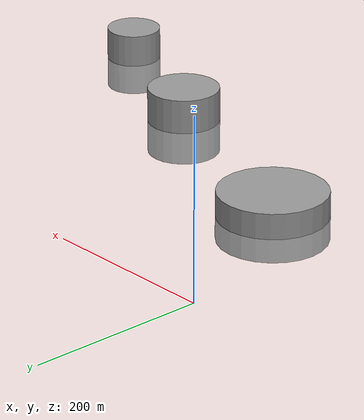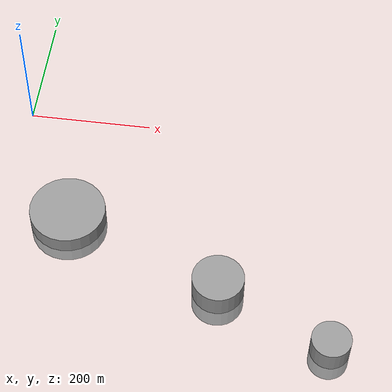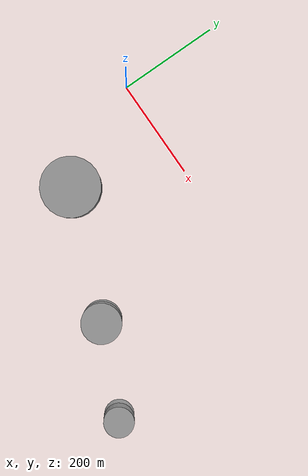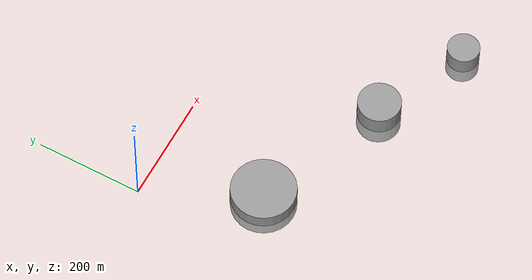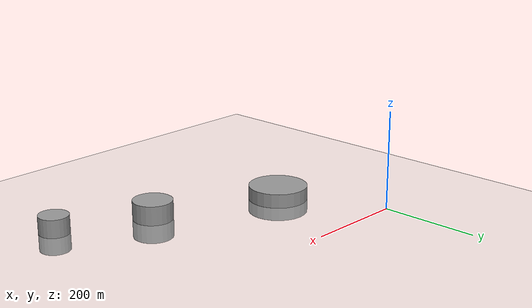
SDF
<sdf version="1.6">
 <world name="default">
  <model name="ground_plane">
   <static>1</static>
   <link name="link">
    <collision name="collision">
     <geometry><plane><normal>0 0 1</normal><size>5000 5000</size></plane></geometry>
     <surface><friction><ode><mu>1</mu><mu2>1</mu2></ode></friction></surface>
    </collision>
    <visual name="runway">
     <pose>0 0 0.005 0 -0 0</pose>
     <cast_shadows>0</cast_shadows>
     <geometry><plane><normal>0 0 1</normal><size>1829 45</size></plane></geometry>
     <material>
      <script><uri>file://media/materials/scripts/gazebo.material</uri><name>Gazebo/Runway</name></script>
     </material>
    </visual>
    <visual name="grass">
     <pose>0 0 -0.1 0 -0 0</pose>
     <cast_shadows>0</cast_shadows>
     <geometry><plane><normal>0 0 1</normal><size>5000 5000</size></plane></geometry>
     <material>
      <script><uri>file://media/materials/scripts/gazebo.material</uri><name>Gazebo/Grass</name></script>
     </material>
    </visual>
   </link>
  </model>
  <model name="Obstacle">
   <link name="link_0">
    <inertial>
     <mass>1</mass>
     <inertia><ixx>0.145833</ixx><ixy>0</ixy><ixz>0</ixz><iyy>0.145833</iyy><iyz>0</iyz><izz>0.125</izz></inertia>
    </inertial>
    <pose>250 -256.667 0.5 0 -0 0</pose>
    <visual name="visual">
     <geometry><cylinder><radius>40</radius><length>75</length></cylinder></geometry>
     <material>
      <lighting>1</lighting>
      <script><uri>file://media/materials/scripts/gazebo.material</uri><name>Gazebo/Grey</name></script>
      <shader type="pixel"><normal_map>__default__</normal_map></shader>
      <ambient>0.3 0.3 0.3 1</ambient>
      <diffuse>0.7 0.7 0.7 1</diffuse>
      <specular>0.01 0.01 0.01 1</specular>
      <emissive>0 0 0 1</emissive>
     </material>
    </visual>
    <collision name="collision">
     <geometry><cylinder><radius>40</radius><length>75</length></cylinder></geometry>
     <surface>
      <friction>
       <ode><mu>1</mu><mu2>1</mu2><fdir1>0 0 0</fdir1><slip1>0</slip1><slip2>0</slip2></ode>
       <torsional>
        <coefficient>1</coefficient>
        <patch_radius>0</patch_radius>
        <surface_radius>0</surface_radius>
        <use_patch_radius>1</use_patch_radius>
        <ode><slip>0</slip></ode>
       </torsional>
      </friction>
      <bounce><restitution_coefficient>0</restitution_coefficient><threshold>1e+06</threshold></bounce>
      <contact>
       <collide_without_contact>0</collide_without_contact>
       <collide_without_contact_bitmask>1</collide_without_contact_bitmask>
       <collide_bitmask>1</collide_bitmask>
       <ode>
        <soft_cfm>0</soft_cfm>
        <soft_erp>0.2</soft_erp>
        <kp>1e+13</kp>
        <kd>1</kd>
        <max_vel>0.01</max_vel>
        <min_depth>0</min_depth>
       </ode>
       <bullet>
        <split_impulse>1</split_impulse>
        <split_impulse_penetration_threshold>-0.01</split_impulse_penetration_threshold>
        <soft_cfm>0</soft_cfm>
        <soft_erp>0.2</soft_erp>
        <kp>1e+13</kp>
        <kd>1</kd>
       </bullet>
      </contact>
     </surface>
    </collision>
   </link>
   <link name="link_4">
    <inertial>
     <mass>1</mass>
     <inertia><ixx>0.145833</ixx><ixy>0</ixy><ixz>0</ixz><iyy>0.145833</iyy><iyz>0</iyz><izz>0.125</izz></inertia>
    </inertial>
    <pose>0 -156.667 0.5 0 -0 0</pose>
    <visual name="visual">
     <geometry><cylinder><radius>60</radius><length>55</length></cylinder></geometry>
     <material>
      <lighting>1</lighting>
      <script><uri>file://media/materials/scripts/gazebo.material</uri><name>Gazebo/Grey</name></script>
      <shader type="pixel"><normal_map>__default__</normal_map></shader>
      <ambient>0.3 0.3 0.3 1</ambient>
      <diffuse>0.7 0.7 0.7 1</diffuse>
      <specular>0.01 0.01 0.01 1</specular>
      <emissive>0 0 0 1</emissive>
     </material>
    </visual>
    <collision name="collision">
     <geometry><cylinder><radius>60</radius><length>55</length></cylinder></geometry>
     <surface>
      <friction>
       <ode><mu>1</mu><mu2>1</mu2><fdir1>0 0 0</fdir1><slip1>0</slip1><slip2>0</slip2></ode>
       <torsional>
        <coefficient>1</coefficient>
        <patch_radius>0</patch_radius>
        <surface_radius>0</surface_radius>
        <use_patch_radius>1</use_patch_radius>
        <ode><slip>0</slip></ode>
       </torsional>
      </friction>
      <bounce><restitution_coefficient>0</restitution_coefficient><threshold>1e+06</threshold></bounce>
      <contact>
       <collide_without_contact>0</collide_without_contact>
       <collide_without_contact_bitmask>1</collide_without_contact_bitmask>
       <collide_bitmask>1</collide_bitmask>
       <ode>
        <soft_cfm>0</soft_cfm>
        <soft_erp>0.2</soft_erp>
        <kp>1e+13</kp>
        <kd>1</kd>
        <max_vel>0.01</max_vel>
        <min_depth>0</min_depth>
       </ode>
       <bullet>
        <split_impulse>1</split_impulse>
        <split_impulse_penetration_threshold>-0.01</split_impulse_penetration_threshold>
        <soft_cfm>0</soft_cfm>
        <soft_erp>0.2</soft_erp>
        <kp>1e+13</kp>
        <kd>1</kd>
       </bullet>
      </contact>
     </surface>
    </collision>
   </link>
   <link name="link_5">
    <inertial>
     <mass>1</mass>
     <inertia><ixx>0.145833</ixx><ixy>0</ixy><ixz>0</ixz><iyy>0.145833</iyy><iyz>0</iyz><izz>0.125</izz></inertia>
    </inertial>
    <pose>425 -336.667 0.5 0 -0 0</pose>
    <visual name="visual">
     <geometry><cylinder><radius>30</radius><length>70</length></cylinder></geometry>
     <material>
      <lighting>1</lighting>
      <script><uri>file://media/materials/scripts/gazebo.material</uri><name>Gazebo/Grey</name></script>
      <shader type="pixel"><normal_map>__default__</normal_map></shader>
      <ambient>0.3 0.3 0.3 1</ambient>
      <diffuse>0.7 0.7 0.7 1</diffuse>
      <specular>0.01 0.01 0.01 1</specular>
      <emissive>0 0 0 1</emissive>
     </material>
    </visual>
    <collision name="collision">
     <geometry><cylinder><radius>30</radius><length>70</length></cylinder></geometry>
     <surface>
      <friction>
       <ode><mu>1</mu><mu2>1</mu2><fdir1>0 0 0</fdir1><slip1>0</slip1><slip2>0</slip2></ode>
       <torsional>
        <coefficient>1</coefficient>
        <patch_radius>0</patch_radius>
        <surface_radius>0</surface_radius>
        <use_patch_radius>1</use_patch_radius>
        <ode><slip>0</slip></ode>
       </torsional>
      </friction>
      <bounce><restitution_coefficient>0</restitution_coefficient><threshold>1e+06</threshold></bounce>
      <contact>
       <collide_without_contact>0</collide_without_contact>
       <collide_without_contact_bitmask>1</collide_without_contact_bitmask>
       <collide_bitmask>1</collide_bitmask>
       <ode>
        <soft_cfm>0</soft_cfm>
        <soft_erp>0.2</soft_erp>
        <kp>1e+13</kp>
        <kd>1</kd>
        <max_vel>0.01</max_vel>
        <min_depth>0</min_depth>
       </ode>
       <bullet>
        <split_impulse>1</split_impulse>
        <split_impulse_penetration_threshold>-0.01</split_impulse_penetration_threshold>
        <soft_cfm>0</soft_cfm>
        <soft_erp>0.2</soft_erp>
        <kp>1e+13</kp>
        <kd>1</kd>
       </bullet>
      </contact>
     </surface>
    </collision>
   </link>
   <static>0</static>
   <pose>100 -43.3333 0 0 -0 0</pose>
  </model>
 </world>
</sdf>
